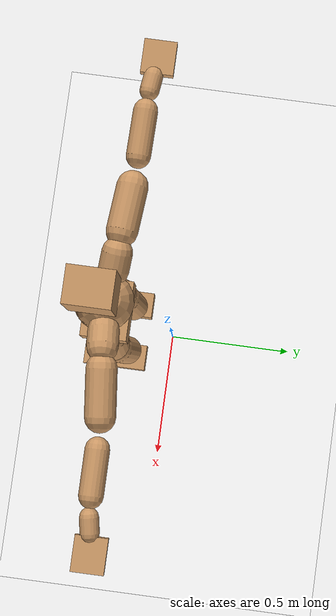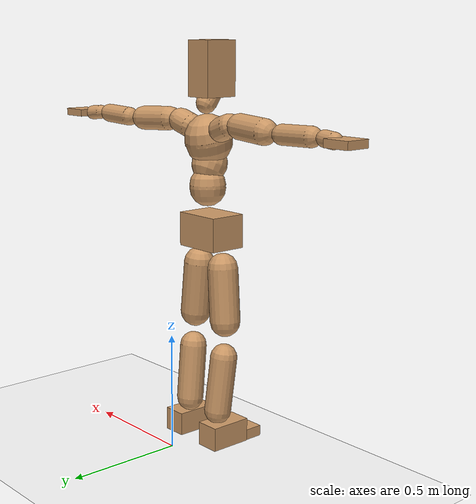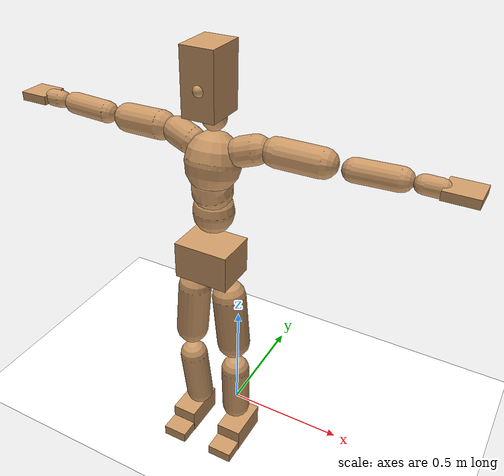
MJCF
<mujoco model="humanoid">
  <option integrator="implicitfast" />

  <visual>
    <global offwidth="1280" offheight="960" />
    <headlight active="1" ambient="0.34 0.34 0.34" diffuse="0.5 0.5 0.5" />
  </visual>

  <default>
    <joint damping="2" stiffness="2" armature="0.01" limited="true" solimplimit="0 .99 .01" />
    <geom condim="1" friction="0.7 0.005 0.0001" solimp=".99 .99 .003" solref="0.015 1" margin="0.001" rgba="0.8 0.6 .4 1" />
    <default class="smplcontact">
      <geom condim="3" friction="1. 0.005 0.0001" solref="0.015 1" solimp="0.98 0.98 0.001" priority="1" />
    </default>
    <default class="stiff_medium">
      <joint stiffness="10" />
    </default>
    <default class="stiff_medium_higher">
      <joint stiffness="50" />
    </default>
    <default class="stiff_high">
      <joint stiffness="100" />
    </default>
  </default>

  <asset>
    <texture type="skybox" builtin="gradient" rgb1="0.99 0.99 0.99" rgb2="0.608 0.828 0.892" width="100" />
    <texture builtin="flat" height="1278" mark="cross" markrgb="1 1 1" name="texgeom" random="0.01" rgb1="0.8 0.6 0.4" rgb2="0.8 0.6 0.4" type="cube" width="127" />
    <texture name="texplane" type="2d" builtin="checker" markrgb="1 1 1" rgb1="0.756 0.772 0.76" rgb2="0.6 0.6 0.6" width="100" height="100" />
    <material name="MatPlane" reflectance="0.5" texture="texplane" texrepeat="1 1" texuniform="true" />
    <material name="geom" texture="texgeom" texuniform="true" />
  </asset>

  <worldbody>
    <light name="tracking_light" pos="0 0 7" dir="0 0 -1" directional="true" cutoff="100" exponent="1" diffuse="1 1 1" specular="0.1 0.1 0.1" mode="trackcom" />
    <camera name="back" pos="0 3 2.4" xyaxes="-1 0 0 0 -1 2" mode="trackcom" />
    <camera name="side" pos="-3 0 2.4" xyaxes="0 -1 0 1 0 2" mode="trackcom" />
    <camera name="front_side" pos="-2.8 -2.8 0.8" xyaxes="0.5 -0.5 0 0.1 0.1 1" mode="trackcom" />
    <geom condim="3" name="floor" pos="0 0 0" rgba="1 1 1 1" size="100 100 .2" type="plane" material="MatPlane" />
    <body name="Pelvis" pos="-0.0018 -0.2233 0.940285" euler="90 0 0">
      <site name="Pelvis" size="0.01" />
      <freejoint name="Pelvis" />
      <geom type="box" pos="-0.0000 -0.0121 -0.0055" size="0.1069 0.0722 0.083" quat="1.0000 0.0000 0.0000 0.0000" density="3165.830099" name="Pelvis" />
      <body name="L_Hip" pos="0.0695 -0.0914 -0.0068">
        <joint name="L_Hip_x" type="hinge" pos="0 0 0" axis="1 0 0" stiffness="11.845982261904764" range="-160.0 22.92" class="stiff_medium" damping="17.858985290376115" armature="0.011966302106122456"/>
        <joint name="L_Hip_y" type="hinge" pos="0 0 0" axis="0 1 0" stiffness="11.861319404761907" range="-70.0 70.0" class="stiff_medium" damping="12.425281472149909" armature="0.013016057859479827"/>
        <joint name="L_Hip_z" type="hinge" pos="0 0 0" axis="0 0 1" stiffness="11.857730952380951" range="-28.65 90.0" class="stiff_medium" damping="11.911110892873467" armature="0.011964731133812873"/>
        <geom type="capsule" density="2040.816327" fromto="0.0069 -0.075 -0.0009 0.0274 -0.3002 -0.0036" size="0.0661125" name="L_Hip" />
        <body name="L_Knee" pos="0.0343 -0.3752 -0.0045">
          <joint name="L_Knee_x" type="hinge" pos="0 0 0" axis="1 0 0" range="-5.16 171.89" damping="9.63806756268041" armature="0.012138865675719568" stiffness="2.3913979285714286"/>
          <joint name="L_Knee_y" type="hinge" pos="0 0 0" axis="0 1 0" range="-4.58 6.88" damping="10.017325830045376" armature="0.013201613860243322" stiffness="2.3753444523809524"/>
          <joint name="L_Knee_z" type="hinge" pos="0 0 0" axis="0 0 1" range="-6.88 4.58" damping="9.637505265446205" armature="0.012131103964159416" stiffness="2.392648785714286"/>
          <geom type="capsule" density="1234.567901" fromto="-0.0027 -0.0796 -0.0087 -0.0109 -0.3184 -0.035" size="0.0581575" name="L_Knee" />
          <body name="L_Ankle" pos="-0.0136 -0.398 -0.0437">
            <joint name="L_Ankle_x" type="hinge" pos="0 0 0" axis="1 0 0" range="-45.84 45.84" class="stiff_medium" damping="7.649722625188941" armature="0.013084690036621138" stiffness="12.42297"/>
            <joint name="L_Ankle_y" type="hinge" pos="0 0 0" axis="0 1 0" range="-74.48 22.92" class="stiff_medium" damping="3.8317692838493547" armature="0.013131996477002233" stiffness="12.42297"/>
            <joint name="L_Ankle_z" type="hinge" pos="0 0 0" axis="0 0 1" range="-4.58 4.58" class="stiff_medium" damping="7.7533778246044704" armature="0.013441692573217274" stiffness="12.42297"/>
            <geom type="box" pos="0.0233 -0.0239 0.0242" size="0.0519225 0.04988 0.091375" quat="1.0000 0.0000 0.0000 0.0000" density="449.071558" name="L_Ankle" class="smplcontact" />
            <body name="L_Toe" pos="0.0264 -0.0558 0.1193">
              <joint name="L_Toe_x" type="hinge" pos="0 0 0" axis="1 0 0" range="-91.67 22.92" armature="0.01362126665349695" damping="2.6016655203803043" stiffness="2.484594"/>
              <joint name="L_Toe_y" type="hinge" pos="0 0 0" axis="0 1 0" range="-4.58 4.58" armature="0.013838407677106425" damping="2.622320525187284" stiffness="2.484594"/>
              <joint name="L_Toe_z" type="hinge" pos="0 0 0" axis="0 0 1" range="-4.58 4.58" armature="0.014277455139283211" damping="2.6635945402531607" stiffness="2.484594"/>
              <geom type="box" pos="-0.003 0.0055 0.0248" size="0.051385 0.0215 0.05332" quat="1.0000 0.0000 0.0000 0.0000" density="423.206892" name="L_Toe" class="smplcontact" />
            </body>
          </body>
        </body>
      </body>
      <body name="R_Hip" pos="-0.0677 -0.0905 -0.0043">
        <joint name="R_Hip_x" type="hinge" pos="0 0 0" axis="1 0 0" stiffness="11.845982261904764" range="-160.0 22.92" class="stiff_medium" damping="17.858985290376115" armature="0.011966302106122456"/>
        <joint name="R_Hip_y" type="hinge" pos="0 0 0" axis="0 1 0" stiffness="11.861319404761907" range="-70.0 70.0" class="stiff_medium" damping="12.425281472149909" armature="0.013016057859479827"/>
        <joint name="R_Hip_z" type="hinge" pos="0 0 0" axis="0 0 1" stiffness="11.857730952380951" range="-90.0 28.65" class="stiff_medium" damping="11.911110892873467" armature="0.011964731133812873"/>
        <geom type="capsule" density="2040.816327" fromto="-0.0077 -0.0765 -0.0018 -0.0306 -0.3061 -0.0071" size="0.065145" name="R_Hip" />
        <body name="R_Knee" pos="-0.0383 -0.3826 -0.0089">
          <joint name="R_Knee_x" type="hinge" pos="0 0 0" axis="1 0 0" range="-5.16 171.89" damping="9.63806756268041" armature="0.012138865675719568" stiffness="2.3913979285714286"/>
          <joint name="R_Knee_y" type="hinge" pos="0 0 0" axis="0 1 0" range="-6.88 4.58" damping="10.017325830045376" armature="0.013201613860243322" stiffness="2.3753444523809524"/>
          <joint name="R_Knee_z" type="hinge" pos="0 0 0" axis="0 0 1" range="-4.58 6.88" damping="9.637505265446205" armature="0.012131103964159416" stiffness="2.392648785714286"/>
          <geom type="capsule" density="1234.567901" fromto="0.0032 -0.0797 -0.0085 0.0126 -0.3187 -0.0338" size="0.0581575" name="R_Knee" />
          <body name="R_Ankle" pos="0.0158 -0.3984 -0.0423">
            <joint name="R_Ankle_x" type="hinge" pos="0 0 0" axis="1 0 0" range="-45.84 45.84" class="stiff_medium" damping="7.649722625188941" armature="0.013084690036621138" stiffness="12.42297"/>
            <joint name="R_Ankle_y" type="hinge" pos="0 0 0" axis="0 1 0" range="-22.92 74.48" class="stiff_medium" damping="3.8317692838493547" armature="0.013131996477002233" stiffness="12.42297"/>
            <joint name="R_Ankle_z" type="hinge" pos="0 0 0" axis="0 0 1" range="-4.58 4.58" class="stiff_medium" damping="7.7533778246044704" armature="0.013441692573217274" stiffness="12.42297"/>
            <geom type="box" pos="-0.0212 -0.0174 0.0256" size="0.0519225 0.051385 0.0929875" quat="1.0000 0.0000 0.0000 0.0000" density="434.700981" name="R_Ankle" class="smplcontact" />
            <body name="R_Toe" pos="-0.0254 -0.0481 0.1233">
              <joint name="R_Toe_x" type="hinge" pos="0 0 0" axis="1 0 0" range="-91.67 22.92" armature="0.01362126665349695" damping="2.6016655203803043" stiffness="2.484594"/>
              <joint name="R_Toe_y" type="hinge" pos="0 0 0" axis="0 1 0" range="-4.58 4.58" armature="0.013838407677106425" damping="2.622320525187284" stiffness="2.484594"/>
              <joint name="R_Toe_z" type="hinge" pos="0 0 0" axis="0 0 1" range="-4.58 4.58" armature="0.014277455139283211" damping="2.6635945402531607" stiffness="2.484594"/>
              <geom type="box" pos="0.0042 0.0045 0.0227" size="0.0514925 0.02322 0.0529975" quat="1.0000 0.0000 0.0000 0.0000" density="407.384095" name="R_Toe" class="smplcontact" />
            </body>
          </body>
        </body>
      </body>
      <body name="Torso" pos="-0.0025 0.109 -0.0267">
        <joint name="Torso_x" type="hinge" pos="0 0 0" axis="1 0 0" range="-25.78 57.3" class="stiff_medium" damping="15.000000000000004" armature="0.010000000000000005" stiffness="10.0"/>
        <joint name="Torso_y" type="hinge" pos="0 0 0" axis="0 1 0" range="-57.3 57.3" class="stiff_high" damping="20.0" armature="0.010000000000000002" stiffness="100.0"/>
        <joint name="Torso_z" type="hinge" pos="0 0 0" axis="0 0 1" range="-34.38 34.38" class="stiff_high" damping="20.0" armature="0.01" stiffness="100.0"/>
        <geom type="capsule" density="2040.816327" fromto="0.0025 0.0608 0.0005 0.003 0.0743 0.0006" size="0.0769" name="Torso" />
        <body name="Spine" pos="0.0055 0.1352 0.0011">
          <joint name="Spine_x" type="hinge" pos="0 0 0" axis="1 0 0" stiffness="10.0" range="-25.78 57.3" class="stiff_medium" damping="15.000000000000014" armature="0.010000000000000018"/>
          <joint name="Spine_y" type="hinge" pos="0 0 0" axis="0 1 0" stiffness="10.0" range="-57.3 57.3" class="stiff_high" damping="8.0" armature="0.010000000000000002"/>
          <joint name="Spine_z" type="hinge" pos="0 0 0" axis="0 0 1" stiffness="20.0" range="-34.38 34.38" class="stiff_high" damping="12.000000000000004" armature="0.010000000000000005"/>
          <geom type="capsule" density="2040.816327" fromto="0.0007 0.0238 0.0114 0.0008 0.0291 0.014" size="0.0755" name="Spine" />
          <body name="Chest" pos="0.0015 0.0529 0.0254">
            <joint name="Chest_x" type="hinge" pos="0 0 0" axis="1 0 0" stiffness="10.0" range="-25.78 57.3" class="stiff_medium" damping="15.000000000000007" armature="0.010000000000000009"/>
            <joint name="Chest_y" type="hinge" pos="0 0 0" axis="0 1 0" stiffness="10.0" range="-57.3 57.3" class="stiff_high" damping="8.0" armature="0.010000000000000002"/>
            <joint name="Chest_z" type="hinge" pos="0 0 0" axis="0 0 1" stiffness="20.0" range="-34.38 34.38" class="stiff_high" damping="12.0" armature="0.010000000000000002"/>
            <geom type="capsule" density="2040.816327" fromto="-0.0009 0.0682 -0.0173 -0.001 0.0833 -0.0212" size="0.1002" name="Chest" />
            <body name="Neck" pos="-0.0028 0.2139 -0.0429">
              <joint name="Neck_x" type="hinge" pos="0 0 0" axis="1 0 0" range="-28.65 57.3" class="stiff_medium_higher" damping="10.0" armature="0.01" stiffness="50.0"/>
              <joint name="Neck_y" type="hinge" pos="0 0 0" axis="0 1 0" range="-40.11 40.11" class="stiff_medium_higher" damping="10.0" armature="0.01" stiffness="50.0"/>
              <joint name="Neck_z" type="hinge" pos="0 0 0" axis="0 0 1" range="-40.11 40.11" class="stiff_medium_higher" damping="9.999999999999995" armature="0.00999999999999999" stiffness="50.0"/>
              <geom type="capsule" density="1000" fromto="0.001 0.013 0.0103 0.0041 0.052 0.0411" size="0.0436" name="Neck" />
              <body name="Head" pos="0.0052 0.065 0.0513">
                <joint name="Head_x" type="hinge" pos="0 0 0" axis="1 0 0" range="-28.65 57.3" class="stiff_medium_higher" damping="2.0000000000000004" armature="0.010000000000000005" stiffness="50.0"/>
                <joint name="Head_y" type="hinge" pos="0 0 0" axis="0 1 0" range="-40.11 40.11" class="stiff_medium_higher" damping="2.0" armature="0.010000000000000002" stiffness="50.0"/>
                <joint name="Head_z" type="hinge" pos="0 0 0" axis="0 0 1" range="-40.11 40.11" class="stiff_medium_higher" damping="1.9999999999999973" armature="0.009999999999999974" stiffness="50.0"/>
                <geom type="box" pos="-0.0042 0.0876 -0.0116" size="0.0606 0.1154 0.076" quat="1.0000 0.0000 0.0000 0.0000" density="1018.069894" name="Head" />
                <geom type="capsule" name="nose" size="0.02 0.01" pos="0 0.07 0.05" quat="1 0 0 0" mass="0" contype="0" conaffinity="0" />
              </body>
            </body>
            <body name="L_Thorax" pos="0.0788 0.1217 -0.0341">
              <joint name="L_Thorax_x" type="hinge" pos="0 0 0" axis="1 0 0" range="-10.89 4.58" class="stiff_medium_higher" damping="20.000000000000124" armature="0.010000000000000125" stiffness="50.0"/>
              <joint name="L_Thorax_y" type="hinge" pos="0 0 0" axis="0 1 0" range="-28.65 17.19" class="stiff_medium_higher" damping="20.0" armature="0.010000000000000002" stiffness="50.0"/>
              <joint name="L_Thorax_z" type="hinge" pos="0 0 0" axis="0 0 1" range="-31.51 40.11" class="stiff_medium_higher" damping="19.999999999999996" armature="0.009999999999999998" stiffness="50.0"/>
              <geom type="capsule" density="1000" fromto="0.0182 0.0061 -0.0018 0.0728 0.0244 -0.0071" size="0.0521" name="L_Thorax" />
              <body name="L_Shoulder" pos="0.091 0.0305 -0.0089">
                <joint name="L_Shoulder_x" type="hinge" pos="0 0 0" axis="1 0 0" range="-97.4 97.4" class="stiff_medium" damping="6.000000000000085" armature="0.010000000000000286" stiffness="10.0"/>
                <joint name="L_Shoulder_y" type="hinge" pos="0 0 0" axis="0 1 0" range="-108.86 80.21" class="stiff_medium" damping="5.999999999999999" armature="0.009999999999999998" stiffness="10.0"/>
                <joint name="L_Shoulder_z" type="hinge" pos="0 0 0" axis="0 0 1" range="-97.4 85.94" class="stiff_medium" damping="6.0" armature="0.01" stiffness="10.0"/>
                <geom type="capsule" density="1000" fromto="0.0519 -0.0026 -0.0055 0.2077 -0.0102 -0.022" size="0.0517" name="L_Shoulder" />
                <body name="L_Elbow" pos="0.2596 -0.0128 -0.0275">
                  <joint name="L_Elbow_x" type="hinge" pos="0 0 0" axis="1 0 0" range="-17.19 4.58" damping="4.999999999999979" armature="0.009999999999999915" stiffness="2.0"/>
                  <joint name="L_Elbow_y" type="hinge" pos="0 0 0" axis="0 1 0" range="-180.0 17.19" damping="5.000000000000004" armature="0.010000000000000018" stiffness="2.0"/>
                  <joint name="L_Elbow_z" type="hinge" pos="0 0 0" axis="0 0 1" range="-100.84 4.58" damping="5.000000000000001" armature="0.010000000000000005" stiffness="2.0"/>
                  <geom type="capsule" density="1000" fromto="0.0498 0.0018 -0.0002 0.1994 0.0072 -0.0009" size="0.0405" name="L_Elbow" />
                  <body name="L_Wrist" pos="0.2492 0.009 -0.0012">
                    <joint name="L_Wrist_x" type="hinge" pos="0 0 0" axis="1 0 0" range="-180.0 22.92" armature="0.0099999999999993" damping="1.9999999999999298" stiffness="2.0"/>
                    <joint name="L_Wrist_y" type="hinge" pos="0 0 0" axis="0 1 0" range="-17.19 17.19" armature="0.009999999999999938" damping="1.9999999999999938" stiffness="2.0"/>
                    <joint name="L_Wrist_z" type="hinge" pos="0 0 0" axis="0 0 1" range="-22.92 22.92" armature="0.009999999999999903" damping="1.9999999999999902" stiffness="2.0"/>
                    <geom type="capsule" density="1000" fromto="0.0168 -0.0016 -0.003 0.0672 -0.0065 -0.012" size="0.0318" name="L_Wrist" class="smplcontact" />
                    <body name="L_Hand" pos="0.084 -0.0082 -0.0149">
                      <joint name="L_Hand_x" type="hinge" pos="0 0 0" axis="1 0 0" range="-17.19 17.19" armature="0.009999999999999683" damping="1.9999999999999682" stiffness="2.0"/>
                      <joint name="L_Hand_y" type="hinge" pos="0 0 0" axis="0 1 0" range="-51.57 51.57" armature="0.01000000000000011" damping="2.0000000000000107" stiffness="2.0"/>
                      <joint name="L_Hand_z" type="hinge" pos="0 0 0" axis="0 0 1" range="-91.67 91.67" armature="0.010000000000000045" damping="2.0000000000000044" stiffness="2.0"/>
                      <geom type="box" pos="0.0493 0.001 -0.0058" size="0.0585 0.0158 0.0538" quat="1.0000 0.0000 0.0000 0.0000" density="400.552564" name="L_Hand" class="smplcontact" />
                    </body>
                  </body>
                </body>
              </body>
            </body>
            <body name="R_Thorax" pos="-0.0818 0.1188 -0.0386">
              <joint name="R_Thorax_x" type="hinge" pos="0 0 0" axis="1 0 0" range="-10.89 4.58" class="stiff_medium_higher" damping="20.000000000000124" armature="0.010000000000000125" stiffness="50.0"/>
              <joint name="R_Thorax_y" type="hinge" pos="0 0 0" axis="0 1 0" range="-17.19 28.65" class="stiff_medium_higher" damping="20.0" armature="0.010000000000000002" stiffness="50.0"/>
              <joint name="R_Thorax_z" type="hinge" pos="0 0 0" axis="0 0 1" range="-40.11 31.51" class="stiff_medium_higher" damping="19.999999999999996" armature="0.009999999999999998" stiffness="50.0"/>
              <geom type="capsule" density="1000" fromto="-0.0192 0.0065 -0.0018 -0.0768 0.026 -0.0073" size="0.0511" name="R_Thorax" />
              <body name="R_Shoulder" pos="-0.096 0.0326 -0.0091">
                <joint name="R_Shoulder_x" type="hinge" pos="0 0 0" axis="1 0 0" range="-97.4 97.4" class="stiff_medium" damping="6.000000000000085" armature="0.010000000000000286" stiffness="10.0"/>
                <joint name="R_Shoulder_y" type="hinge" pos="0 0 0" axis="0 1 0" range="-80.21 108.86" class="stiff_medium" damping="5.999999999999999" armature="0.009999999999999998" stiffness="10.0"/>
                <joint name="R_Shoulder_z" type="hinge" pos="0 0 0" axis="0 0 1" range="-85.94 97.4" class="stiff_medium" damping="6.0" armature="0.01" stiffness="10.0"/>
                <geom type="capsule" density="1000" fromto="-0.0507 -0.0027 -0.0043 -0.203 -0.0107 -0.0171" size="0.0531" name="R_Shoulder" />
                <body name="R_Elbow" pos="-0.2537 -0.0133 -0.0214">
                  <joint name="R_Elbow_x" type="hinge" pos="0 0 0" axis="1 0 0" range="-17.19 4.58" damping="4.999999999999979" armature="0.009999999999999915" stiffness="2.0"/>
                  <joint name="R_Elbow_y" type="hinge" pos="0 0 0" axis="0 1 0" range="-17.19 180.0" damping="5.000000000000004" armature="0.010000000000000018" stiffness="2.0"/>
                  <joint name="R_Elbow_z" type="hinge" pos="0 0 0" axis="0 0 1" range="-4.58 100.84" damping="5.000000000000001" armature="0.010000000000000005" stiffness="2.0"/>
                  <geom type="capsule" density="1000" fromto="-0.0511 0.0016 -0.0011 -0.2042 0.0062 -0.0044" size="0.0408" name="R_Elbow" />
                  <body name="R_Wrist" pos="-0.2553 0.0078 -0.0056">
                    <joint name="R_Wrist_x" type="hinge" pos="0 0 0" axis="1 0 0" range="-180.0 22.92" armature="0.0099999999999993" damping="1.9999999999999298" stiffness="2.0"/>
                    <joint name="R_Wrist_y" type="hinge" pos="0 0 0" axis="0 1 0" range="-17.19 17.19" armature="0.009999999999999938" damping="1.9999999999999938" stiffness="2.0"/>
                    <joint name="R_Wrist_z" type="hinge" pos="0 0 0" axis="0 0 1" range="-22.92 22.92" armature="0.009999999999999903" damping="1.9999999999999902" stiffness="2.0"/>
                    <geom type="capsule" density="1000" fromto="-0.0169 -0.0012 -0.0021 -0.0677 -0.0049 -0.0083" size="0.0326" name="R_Wrist" class="smplcontact" />
                    <body name="R_Hand" pos="-0.0846 -0.0061 -0.0103">
                      <joint name="R_Hand_x" type="hinge" pos="0 0 0" axis="1 0 0" range="-17.19 17.19" armature="0.009999999999999683" damping="1.9999999999999682" stiffness="2.0"/>
                      <joint name="R_Hand_y" type="hinge" pos="0 0 0" axis="0 1 0" range="-51.57 51.57" armature="0.01000000000000011" damping="2.0000000000000107" stiffness="2.0"/>
                      <joint name="R_Hand_z" type="hinge" pos="0 0 0" axis="0 0 1" range="-91.67 91.67" armature="0.010000000000000045" damping="2.0000000000000044" stiffness="2.0"/>
                      <geom type="box" pos="-0.0462 -0.0009 -0.0079" size="0.0569 0.0164 0.0546" quat="1.0000 0.0000 0.0000 0.0000" density="403.679611" name="R_Hand" class="smplcontact" />
                    </body>
                  </body>
                </body>
              </body>
            </body>
          </body>
        </body>
      </body>
    </body>
  </worldbody>
  <actuator>
    <general name="L_Hip_x" joint="L_Hip_x" biastype="affine" gainprm="340.37068426088405" biasprm="-255.073329315996 -213.22768071428575 -2.3811980387168155" ctrllimited="true" ctrlrange="-1 1" forcerange="-426.4553614285715 426.4553614285715" />
    <general name="L_Hip_y" joint="L_Hip_y" biastype="affine" gainprm="260.8440373271745" biasprm="0.0 -213.50374928571432 -2.485056294429982" ctrllimited="true" ctrlrange="-1 1" forcerange="-427.00749857142864 427.00749857142864" />
    <general name="L_Hip_z" joint="L_Hip_z" biastype="affine" gainprm="220.99844185920932" biasprm="114.27100217498938 -213.43915714285714 -2.3822221785746933" ctrllimited="true" ctrlrange="-1 1" forcerange="-426.8783142857143 426.8783142857143" />
    <general name="L_Knee_x" joint="L_Knee_x" biastype="affine" gainprm="332.53522874333845" biasprm="313.152209479677 -215.22581357142857 -2.4095168906701026" ctrllimited="true" ctrlrange="-1 1" forcerange="-430.45162714285715 430.45162714285715" />
    <general name="L_Knee_y" joint="L_Knee_y" biastype="affine" gainprm="21.379674812054198" biasprm="4.29085969177353 -213.7810007142857 -2.504331457511344" ctrllimited="true" ctrlrange="-1 1" forcerange="-427.5620014285714 427.5620014285714" />
    <general name="L_Knee_z" joint="L_Knee_z" biastype="affine" gainprm="21.535425284005846" biasprm="-4.322118512496811 -215.33839071428574 -2.409376316361551" ctrllimited="true" ctrlrange="-1 1" forcerange="-430.6767814285715 430.6767814285715" />
    <general name="L_Ankle_x" joint="L_Ankle_x" biastype="affine" gainprm="89.45197267156058" biasprm="0.0 -111.80673 -2.549907541729647" ctrllimited="true" ctrlrange="-1 1" forcerange="-223.61346 223.61346" />
    <general name="L_Ankle_y" joint="L_Ankle_y" biastype="affine" gainprm="95.03296398571118" biasprm="-50.306977649930886 -111.80673 -2.55451285589957" ctrllimited="true" ctrlrange="-1 1" forcerange="-223.61346 223.61346" />
    <general name="L_Ankle_z" joint="L_Ankle_z" biastype="affine" gainprm="8.937391684898502" biasprm="0.0 -111.80673 -2.584459274868157" ctrllimited="true" ctrlrange="-1 1" forcerange="-223.61346 223.61346" />
    <general name="L_Toe_x" joint="L_Toe_x" biastype="affine" gainprm="89.44416708930301" biasprm="-53.663378020678785 -89.445384 -1.0406662081521219" ctrllimited="true" ctrlrange="-1 1" forcerange="-178.890768 178.890768" />
    <general name="L_Toe_y" joint="L_Toe_y" biastype="affine" gainprm="7.149913347918803" biasprm="0.0 -89.445384 -1.0489282100749138" ctrllimited="true" ctrlrange="-1 1" forcerange="-178.890768 178.890768" />
    <general name="L_Toe_z" joint="L_Toe_z" biastype="affine" gainprm="7.149913347918803" biasprm="0.0 -89.445384 -1.0654378161012643" ctrllimited="true" ctrlrange="-1 1" forcerange="-178.890768 178.890768" />
    <general name="R_Hip_x" joint="R_Hip_x" biastype="affine" gainprm="340.37068426088405" biasprm="-255.073329315996 -213.22768071428575 -2.3811980387168155" ctrllimited="true" ctrlrange="-1 1" forcerange="-426.4553614285715 426.4553614285715" />
    <general name="R_Hip_y" joint="R_Hip_y" biastype="affine" gainprm="260.8440373271745" biasprm="0.0 -213.50374928571432 -2.485056294429982" ctrllimited="true" ctrlrange="-1 1" forcerange="-427.00749857142864 427.00749857142864" />
    <general name="R_Hip_z" joint="R_Hip_z" biastype="affine" gainprm="220.99844185920932" biasprm="-114.27100217498938 -213.43915714285714 -2.3822221785746933" ctrllimited="true" ctrlrange="-1 1" forcerange="-426.8783142857143 426.8783142857143" />
    <general name="R_Knee_x" joint="R_Knee_x" biastype="affine" gainprm="332.53522874333845" biasprm="313.152209479677 -215.22581357142857 -2.4095168906701026" ctrllimited="true" ctrlrange="-1 1" forcerange="-430.45162714285715 430.45162714285715" />
    <general name="R_Knee_y" joint="R_Knee_y" biastype="affine" gainprm="21.379674812054198" biasprm="-4.29085969177353 -213.7810007142857 -2.504331457511344" ctrllimited="true" ctrlrange="-1 1" forcerange="-427.5620014285714 427.5620014285714" />
    <general name="R_Knee_z" joint="R_Knee_z" biastype="affine" gainprm="21.535425284005846" biasprm="4.322118512496811 -215.33839071428574 -2.409376316361551" ctrllimited="true" ctrlrange="-1 1" forcerange="-430.6767814285715 430.6767814285715" />
    <general name="R_Ankle_x" joint="R_Ankle_x" biastype="affine" gainprm="89.45197267156058" biasprm="0.0 -111.80673 -2.549907541729647" ctrllimited="true" ctrlrange="-1 1" forcerange="-223.61346 223.61346" />
    <general name="R_Ankle_y" joint="R_Ankle_y" biastype="affine" gainprm="95.03296398571118" biasprm="50.306977649930886 -111.80673 -2.55451285589957" ctrllimited="true" ctrlrange="-1 1" forcerange="-223.61346 223.61346" />
    <general name="R_Ankle_z" joint="R_Ankle_z" biastype="affine" gainprm="8.937391684898502" biasprm="0.0 -111.80673 -2.584459274868157" ctrllimited="true" ctrlrange="-1 1" forcerange="-223.61346 223.61346" />
    <general name="R_Toe_x" joint="R_Toe_x" biastype="affine" gainprm="89.44416708930301" biasprm="-53.663378020678785 -89.445384 -1.0406662081521219" ctrllimited="true" ctrlrange="-1 1" forcerange="-178.890768 178.890768" />
    <general name="R_Toe_y" joint="R_Toe_y" biastype="affine" gainprm="7.149913347918803" biasprm="0.0 -89.445384 -1.0489282100749138" ctrllimited="true" ctrlrange="-1 1" forcerange="-178.890768 178.890768" />
    <general name="R_Toe_z" joint="R_Toe_z" biastype="affine" gainprm="7.149913347918803" biasprm="0.0 -89.445384 -1.0654378161012643" ctrllimited="true" ctrlrange="-1 1" forcerange="-178.890768 178.890768" />
    <general name="Torso_x" joint="Torso_x" biastype="affine" gainprm="174.00234510682668" biasprm="66.0153336274335 -240.0 -4.000000000000001" ctrllimited="true" ctrlrange="-1 1" forcerange="-360.0 360.0" />
    <general name="Torso_y" joint="Torso_y" biastype="affine" gainprm="240.0176787342602" biasprm="0.0 -240.0 -4.0" ctrllimited="true" ctrlrange="-1 1" forcerange="-360.0 360.0" />
    <general name="Torso_z" joint="Torso_z" biastype="affine" gainprm="144.01060724055614" biasprm="0.0 -240.0 -4.0" ctrllimited="true" ctrlrange="-1 1" forcerange="-360.0 360.0" />
    <general name="Spine_x" joint="Spine_x" biastype="affine" gainprm="174.00234510682668" biasprm="66.0153336274335 -240.0 -4.0000000000000036" ctrllimited="true" ctrlrange="-1 1" forcerange="-360.0 360.0" />
    <general name="Spine_y" joint="Spine_y" biastype="affine" gainprm="240.0176787342602" biasprm="0.0 -240.0 -4.0" ctrllimited="true" ctrlrange="-1 1" forcerange="-360.0 360.0" />
    <general name="Spine_z" joint="Spine_z" biastype="affine" gainprm="144.01060724055614" biasprm="0.0 -240.0 -4.000000000000001" ctrllimited="true" ctrlrange="-1 1" forcerange="-360.0 360.0" />
    <general name="Chest_x" joint="Chest_x" biastype="affine" gainprm="174.00234510682668" biasprm="66.0153336274335 -240.0 -4.000000000000002" ctrllimited="true" ctrlrange="-1 1" forcerange="-360.0 360.0" />
    <general name="Chest_y" joint="Chest_y" biastype="affine" gainprm="240.0176787342602" biasprm="0.0 -240.0 -4.0" ctrllimited="true" ctrlrange="-1 1" forcerange="-360.0 360.0" />
    <general name="Chest_z" joint="Chest_z" biastype="affine" gainprm="144.01060724055614" biasprm="0.0 -240.0 -4.0" ctrllimited="true" ctrlrange="-1 1" forcerange="-360.0 360.0" />
    <general name="Neck_x" joint="Neck_x" biastype="affine" gainprm="27.00198885760427" biasprm="9.000662952534757 -36.0 -0.8" ctrllimited="true" ctrlrange="-1 1" forcerange="-72.0 72.0" />
    <general name="Neck_y" joint="Neck_y" biastype="affine" gainprm="25.20185626709732" biasprm="0.0 -36.0 -0.8" ctrllimited="true" ctrlrange="-1 1" forcerange="-72.0 72.0" />
    <general name="Neck_z" joint="Neck_z" biastype="affine" gainprm="25.20185626709732" biasprm="0.0 -36.0 -0.7999999999999996" ctrllimited="true" ctrlrange="-1 1" forcerange="-72.0 72.0" />
    <general name="Head_x" joint="Head_x" biastype="affine" gainprm="18.001325905069514" biasprm="6.000441968356505 -24.0 -0.8000000000000003" ctrllimited="true" ctrlrange="-1 1" forcerange="-48.0 48.0" />
    <general name="Head_y" joint="Head_y" biastype="affine" gainprm="16.801237511398213" biasprm="0.0 -24.0 -0.8" ctrllimited="true" ctrlrange="-1 1" forcerange="-48.0 48.0" />
    <general name="Head_z" joint="Head_z" biastype="affine" gainprm="16.801237511398213" biasprm="0.0 -24.0 -0.7999999999999989" ctrllimited="true" ctrlrange="-1 1" forcerange="-48.0 48.0" />
    <general name="L_Thorax_x" joint="L_Thorax_x" biastype="affine" gainprm="16.200146117011364" biasprm="-6.6078165480505335 -120.0 -1.60000000000001" ctrllimited="true" ctrlrange="-1 1" forcerange="-240.0 240.0" />
    <general name="L_Thorax_y" joint="L_Thorax_y" biastype="affine" gainprm="48.00353574685204" biasprm="-12.00088393671301 -120.0 -1.6" ctrllimited="true" ctrlrange="-1 1" forcerange="-240.0 240.0" />
    <general name="L_Thorax_z" joint="L_Thorax_z" biastype="affine" gainprm="75.00028861670033" biasprm="9.00589894029074 -120.0 -1.5999999999999999" ctrllimited="true" ctrlrange="-1 1" forcerange="-240.0 240.0" />
    <general name="L_Shoulder_x" joint="L_Shoulder_x" biastype="affine" gainprm="81.5976331892389" biasprm="0.0 -48.0 -1.6000000000000227" ctrllimited="true" ctrlrange="-1 1" forcerange="-96.0 96.0" />
    <general name="L_Shoulder_y" joint="L_Shoulder_y" biastype="affine" gainprm="79.19745640189629" biasprm="-12.00088393671301 -48.0 -1.5999999999999999" ctrllimited="true" ctrlrange="-1 1" forcerange="-96.0 96.0" />
    <general name="L_Shoulder_z" joint="L_Shoulder_z" biastype="affine" gainprm="76.79727961455369" biasprm="-4.800353574685214 -48.0 -1.6" ctrllimited="true" ctrlrange="-1 1" forcerange="-96.0 96.0" />
    <general name="L_Elbow_x" joint="L_Elbow_x" biastype="affine" gainprm="13.67849441372996" biasprm="-7.923096672353461 -72.0 -0.7999999999999967" ctrllimited="true" ctrlrange="-1 1" forcerange="-144.0 144.0" />
    <general name="L_Elbow_y" joint="L_Elbow_y" biastype="affine" gainprm="123.89813107227425" biasprm="-102.29653998619085 -72.0 -0.8000000000000007" ctrllimited="true" ctrlrange="-1 1" forcerange="-144.0 144.0" />
    <general name="L_Elbow_z" joint="L_Elbow_z" biastype="affine" gainprm="66.23733950828719" biasprm="-60.4819417669107 -72.0 -0.8000000000000003" ctrllimited="true" ctrlrange="-1 1" forcerange="-144.0 144.0" />
    <general name="L_Wrist_x" joint="L_Wrist_x" biastype="affine" gainprm="21.24973270888136" biasprm="-16.449379134196157 -12.0 -0.799999999999972" ctrllimited="true" ctrlrange="-1 1" forcerange="-24.0 24.0" />
    <general name="L_Wrist_y" joint="L_Wrist_y" biastype="affine" gainprm="3.6002651810139037" biasprm="0.0 -12.0 -0.7999999999999976" ctrllimited="true" ctrlrange="-1 1" forcerange="-24.0 24.0" />
    <general name="L_Wrist_z" joint="L_Wrist_z" biastype="affine" gainprm="4.800353574685205" biasprm="0.0 -12.0 -0.7999999999999962" ctrllimited="true" ctrlrange="-1 1" forcerange="-24.0 24.0" />
    <general name="L_Hand_x" joint="L_Hand_x" biastype="affine" gainprm="3.6002651810139037" biasprm="0.0 -12.0 -0.7999999999999874" ctrllimited="true" ctrlrange="-1 1" forcerange="-24.0 24.0" />
    <general name="L_Hand_y" joint="L_Hand_y" biastype="affine" gainprm="10.800795543041708" biasprm="0.0 -12.0 -0.8000000000000043" ctrllimited="true" ctrlrange="-1 1" forcerange="-24.0 24.0" />
    <general name="L_Hand_z" joint="L_Hand_z" biastype="affine" gainprm="19.199319903638422" biasprm="0.0 -12.0 -0.8000000000000018" ctrllimited="true" ctrlrange="-1 1" forcerange="-24.0 24.0" />
    <general name="R_Thorax_x" joint="R_Thorax_x" biastype="affine" gainprm="16.200146117011364" biasprm="-6.6078165480505335 -120.0 -1.60000000000001" ctrllimited="true" ctrlrange="-1 1" forcerange="-240.0 240.0" />
    <general name="R_Thorax_y" joint="R_Thorax_y" biastype="affine" gainprm="48.00353574685204" biasprm="12.000883936713002 -120.0 -1.6" ctrllimited="true" ctrlrange="-1 1" forcerange="-240.0 240.0" />
    <general name="R_Thorax_z" joint="R_Thorax_z" biastype="affine" gainprm="75.00028861670033" biasprm="-9.00589894029074 -120.0 -1.5999999999999999" ctrllimited="true" ctrlrange="-1 1" forcerange="-240.0 240.0" />
    <general name="R_Shoulder_x" joint="R_Shoulder_x" biastype="affine" gainprm="81.5976331892389" biasprm="0.0 -48.0 -1.6000000000000227" ctrllimited="true" ctrlrange="-1 1" forcerange="-96.0 96.0" />
    <general name="R_Shoulder_y" joint="R_Shoulder_y" biastype="affine" gainprm="79.19745640189629" biasprm="12.00088393671301 -48.0 -1.5999999999999999" ctrllimited="true" ctrlrange="-1 1" forcerange="-96.0 96.0" />
    <general name="R_Shoulder_z" joint="R_Shoulder_z" biastype="affine" gainprm="76.79727961455369" biasprm="4.800353574685204 -48.0 -1.6" ctrllimited="true" ctrlrange="-1 1" forcerange="-96.0 96.0" />
    <general name="R_Elbow_x" joint="R_Elbow_x" biastype="affine" gainprm="13.67849441372996" biasprm="-7.923096672353461 -72.0 -0.7999999999999967" ctrllimited="true" ctrlrange="-1 1" forcerange="-144.0 144.0" />
    <general name="R_Elbow_y" joint="R_Elbow_y" biastype="affine" gainprm="123.89813107227425" biasprm="102.29653998619085 -72.0 -0.8000000000000007" ctrllimited="true" ctrlrange="-1 1" forcerange="-144.0 144.0" />
    <general name="R_Elbow_z" joint="R_Elbow_z" biastype="affine" gainprm="66.23733950828719" biasprm="60.481941766910694 -72.0 -0.8000000000000003" ctrllimited="true" ctrlrange="-1 1" forcerange="-144.0 144.0" />
    <general name="R_Wrist_x" joint="R_Wrist_x" biastype="affine" gainprm="21.24973270888136" biasprm="-16.449379134196157 -12.0 -0.799999999999972" ctrllimited="true" ctrlrange="-1 1" forcerange="-24.0 24.0" />
    <general name="R_Wrist_y" joint="R_Wrist_y" biastype="affine" gainprm="3.6002651810139037" biasprm="0.0 -12.0 -0.7999999999999976" ctrllimited="true" ctrlrange="-1 1" forcerange="-24.0 24.0" />
    <general name="R_Wrist_z" joint="R_Wrist_z" biastype="affine" gainprm="4.800353574685205" biasprm="0.0 -12.0 -0.7999999999999962" ctrllimited="true" ctrlrange="-1 1" forcerange="-24.0 24.0" />
    <general name="R_Hand_x" joint="R_Hand_x" biastype="affine" gainprm="3.6002651810139037" biasprm="0.0 -12.0 -0.7999999999999874" ctrllimited="true" ctrlrange="-1 1" forcerange="-24.0 24.0" />
    <general name="R_Hand_y" joint="R_Hand_y" biastype="affine" gainprm="10.800795543041708" biasprm="0.0 -12.0 -0.8000000000000043" ctrllimited="true" ctrlrange="-1 1" forcerange="-24.0 24.0" />
    <general name="R_Hand_z" joint="R_Hand_z" biastype="affine" gainprm="19.199319903638422" biasprm="0.0 -12.0 -0.8000000000000018" ctrllimited="true" ctrlrange="-1 1" forcerange="-24.0 24.0" />
  </actuator>
  <contact>
    <exclude body1="Torso" body2="Chest" />
    <exclude body1="Head" body2="Chest" />
    <exclude body1="R_Knee" body2="R_Toe" />
    <exclude body1="R_Knee" body2="L_Ankle" />
    <exclude body1="R_Knee" body2="L_Toe" />
    <exclude body1="L_Knee" body2="L_Toe" />
    <exclude body1="L_Knee" body2="R_Ankle" />
    <exclude body1="L_Knee" body2="R_Toe" />
    <exclude body1="L_Shoulder" body2="Chest" />
    <exclude body1="R_Shoulder" body2="Chest" />
  </contact>
  <sensor>
    <framelinvel name="sensor_Pelvis_framelinvel" objtype="xbody" objname="Pelvis" />
    <framelinvel name="sensor_L_Hip_framelinvel" objtype="xbody" objname="L_Hip" />
    <framelinvel name="sensor_L_Knee_framelinvel" objtype="xbody" objname="L_Knee" />
    <framelinvel name="sensor_L_Ankle_framelinvel" objtype="xbody" objname="L_Ankle" />
    <framelinvel name="sensor_L_Toe_framelinvel" objtype="xbody" objname="L_Toe" />
    <framelinvel name="sensor_R_Hip_framelinvel" objtype="xbody" objname="R_Hip" />
    <framelinvel name="sensor_R_Knee_framelinvel" objtype="xbody" objname="R_Knee" />
    <framelinvel name="sensor_R_Ankle_framelinvel" objtype="xbody" objname="R_Ankle" />
    <framelinvel name="sensor_R_Toe_framelinvel" objtype="xbody" objname="R_Toe" />
    <framelinvel name="sensor_Torso_framelinvel" objtype="xbody" objname="Torso" />
    <framelinvel name="sensor_Spine_framelinvel" objtype="xbody" objname="Spine" />
    <framelinvel name="sensor_Chest_framelinvel" objtype="xbody" objname="Chest" />
    <framelinvel name="sensor_Neck_framelinvel" objtype="xbody" objname="Neck" />
    <framelinvel name="sensor_Head_framelinvel" objtype="xbody" objname="Head" />
    <framelinvel name="sensor_L_Thorax_framelinvel" objtype="xbody" objname="L_Thorax" />
    <framelinvel name="sensor_L_Shoulder_framelinvel" objtype="xbody" objname="L_Shoulder" />
    <framelinvel name="sensor_L_Elbow_framelinvel" objtype="xbody" objname="L_Elbow" />
    <framelinvel name="sensor_L_Wrist_framelinvel" objtype="xbody" objname="L_Wrist" />
    <framelinvel name="sensor_L_Hand_framelinvel" objtype="xbody" objname="L_Hand" />
    <framelinvel name="sensor_R_Thorax_framelinvel" objtype="xbody" objname="R_Thorax" />
    <framelinvel name="sensor_R_Shoulder_framelinvel" objtype="xbody" objname="R_Shoulder" />
    <framelinvel name="sensor_R_Elbow_framelinvel" objtype="xbody" objname="R_Elbow" />
    <framelinvel name="sensor_R_Wrist_framelinvel" objtype="xbody" objname="R_Wrist" />
    <framelinvel name="sensor_R_Hand_framelinvel" objtype="xbody" objname="R_Hand" />
    <frameangvel name="sensor_Pelvis_frameangvel" objtype="xbody" objname="Pelvis" />
    <frameangvel name="sensor_L_Hip_frameangvel" objtype="xbody" objname="L_Hip" />
    <frameangvel name="sensor_L_Knee_frameangvel" objtype="xbody" objname="L_Knee" />
    <frameangvel name="sensor_L_Ankle_frameangvel" objtype="xbody" objname="L_Ankle" />
    <frameangvel name="sensor_L_Toe_frameangvel" objtype="xbody" objname="L_Toe" />
    <frameangvel name="sensor_R_Hip_frameangvel" objtype="xbody" objname="R_Hip" />
    <frameangvel name="sensor_R_Knee_frameangvel" objtype="xbody" objname="R_Knee" />
    <frameangvel name="sensor_R_Ankle_frameangvel" objtype="xbody" objname="R_Ankle" />
    <frameangvel name="sensor_R_Toe_frameangvel" objtype="xbody" objname="R_Toe" />
    <frameangvel name="sensor_Torso_frameangvel" objtype="xbody" objname="Torso" />
    <frameangvel name="sensor_Spine_frameangvel" objtype="xbody" objname="Spine" />
    <frameangvel name="sensor_Chest_frameangvel" objtype="xbody" objname="Chest" />
    <frameangvel name="sensor_Neck_frameangvel" objtype="xbody" objname="Neck" />
    <frameangvel name="sensor_Head_frameangvel" objtype="xbody" objname="Head" />
    <frameangvel name="sensor_L_Thorax_frameangvel" objtype="xbody" objname="L_Thorax" />
    <frameangvel name="sensor_L_Shoulder_frameangvel" objtype="xbody" objname="L_Shoulder" />
    <frameangvel name="sensor_L_Elbow_frameangvel" objtype="xbody" objname="L_Elbow" />
    <frameangvel name="sensor_L_Wrist_frameangvel" objtype="xbody" objname="L_Wrist" />
    <frameangvel name="sensor_L_Hand_frameangvel" objtype="xbody" objname="L_Hand" />
    <frameangvel name="sensor_R_Thorax_frameangvel" objtype="xbody" objname="R_Thorax" />
    <frameangvel name="sensor_R_Shoulder_frameangvel" objtype="xbody" objname="R_Shoulder" />
    <frameangvel name="sensor_R_Elbow_frameangvel" objtype="xbody" objname="R_Elbow" />
    <frameangvel name="sensor_R_Wrist_frameangvel" objtype="xbody" objname="R_Wrist" />
    <frameangvel name="sensor_R_Hand_frameangvel" objtype="xbody" objname="R_Hand" />
    <subtreelinvel name="Chest_subtreelinvel" body="Chest" />
    <gyro name="Pelvis_gyro" site="Pelvis" />
  </sensor>
</mujoco>
